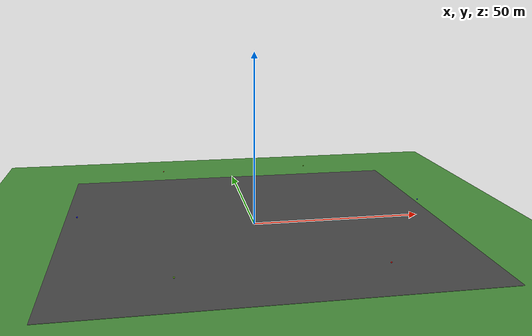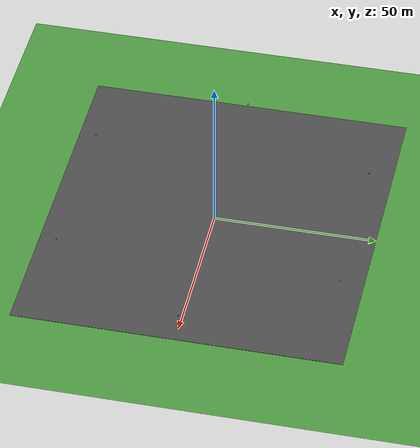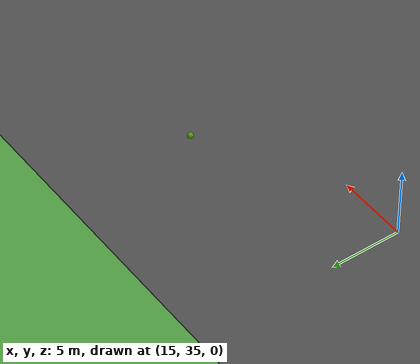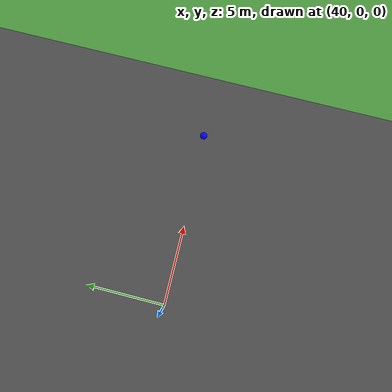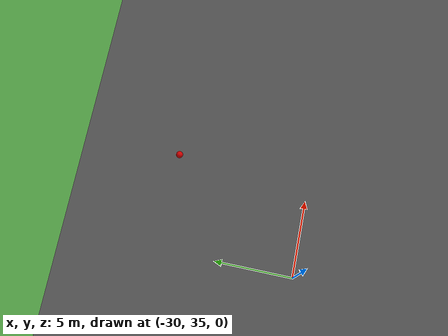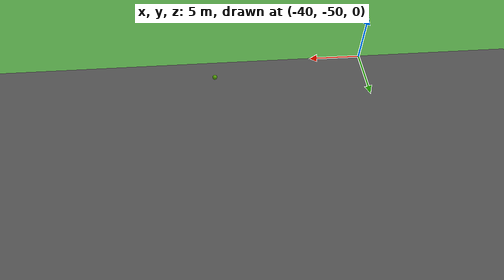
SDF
<sdf version="1.6">
 <world name="default">
  <physics name="default_physics" type="ode">
   <gravity>0 0 -9.8066</gravity>
   <ode>
    <solver><type>quick</type><iters>100</iters><sor>1.0</sor></solver>
    <constraints>
     <cfm>0.0</cfm>
     <erp>0.9</erp>
     <contact_max_correcting_vel>0.1</contact_max_correcting_vel>
     <contact_surface_layer>0.0</contact_surface_layer>
    </constraints>
   </ode>
   <real_time_update_rate>-1</real_time_update_rate>
  </physics>
  <scene><ambient>0.6 0.6 0.6 1</ambient><background>0.7 0.7 0.7 1</background><shadows>false</shadows></scene>
  <include><uri>model://sun</uri></include>
  <model name="grass_plane">
   <static>true</static>
   <link name="link">
    <collision name="collision">
     <geometry><plane><normal>0 0 1</normal><size>5000 5000</size></plane></geometry>
    </collision>
    <visual name="visual">
     <pose>0 0 -0.25 0 0 0</pose>
     <cast_shadows>false</cast_shadows>
     <geometry><plane><normal>0 0 1</normal><size>5000 5000</size></plane></geometry>
     <material>
      <script><uri>file://media/materials/scripts/gazebo.material</uri><name>Gazebo/Grass</name></script>
     </material>
    </visual>
   </link>
  </model>
  <model name="asphalt_pad">
   <static>true</static>
   <link name="link">
    <collision name="collision">
     <geometry><plane><normal>0 0 1</normal><size>200 200</size></plane></geometry>
     <surface><friction><ode><mu>1</mu><mu2>1</mu2></ode></friction></surface>
    </collision>
    <visual name="visual">
     <pose>0 0 0.01 0 0 0</pose>
     <cast_shadows>false</cast_shadows>
     <geometry><box><size>110 100 0.1</size></box></geometry>
     <material>
      <script>
       <uri>model://asphalt_plane/materials/scripts</uri>
       <uri>model://asphalt_plane/materials/textures</uri>
       <name>vrc/asphalt</name>
      </script>
      <ambient>0.5 0.5 0.5 1</ambient>
      <diffuse>0.6 0.6 0.6 1</diffuse>
      <specular>0.1 0.1 0.1 1</specular>
     </material>
    </visual>
   </link>
  </model>
  <model name="origin.origin">
   <link name="link">
    <inertial>
     <inertia><ixx>0.1</ixx><ixy>0</ixy><ixz>0</ixz><iyy>0.1</iyy><iyz>0</iyz><izz>0.1</izz></inertia>
     <mass>1</mass>
    </inertial>
    <gravity>0</gravity>
    <visual name="visual">
     <geometry><sphere><radius>0.2</radius></sphere></geometry>
     <material>
      <script><name>Gazebo/Grey</name><uri>file://media/materials/scripts/gazebo.material</uri></script>
      <shader type="pixel"><normal_map>__default__</normal_map></shader>
      <ambient>0.3 0.3 0.3 1</ambient>
      <diffuse>1.0 1.0 1.0 1</diffuse>
      <specular>0.01 0.01 0.01 1</specular>
      <emissive>0 0 0 1</emissive>
     </material>
     <transparency>0.05</transparency>
    </visual>
   </link>
   <static>0</static>
  </model>
  <model name="traj_1.0">
   <pose>50.0 0.0 5 0 0 0</pose>
   <link name="link">
    <inertial>
     <inertia><ixx>0.1</ixx><ixy>0</ixy><ixz>0</ixz><iyy>0.1</iyy><iyz>0</iyz><izz>0.1</izz></inertia>
     <mass>1</mass>
    </inertial>
    <gravity>0</gravity>
    <visual name="visual">
     <geometry><sphere><radius>0.2</radius></sphere></geometry>
     <material>
      <script><name>Gazebo/Grey</name><uri>file://media/materials/scripts/gazebo.material</uri></script>
      <shader type="pixel"><normal_map>__default__</normal_map></shader>
      <ambient>0.3 0.3 0.3 1</ambient>
      <diffuse>0.0 0.0 1.0 1</diffuse>
      <specular>0.01 0.01 0.01 1</specular>
      <emissive>0 0 0 1</emissive>
     </material>
     <transparency>0.05</transparency>
    </visual>
   </link>
   <static>0</static>
  </model>
  <model name="traj_1.1">
   <pose>-50.0 0.0 5 0 0 0</pose>
   <link name="link">
    <inertial>
     <inertia><ixx>0.1</ixx><ixy>0</ixy><ixz>0</ixz><iyy>0.1</iyy><iyz>0</iyz><izz>0.1</izz></inertia>
     <mass>1</mass>
    </inertial>
    <gravity>0</gravity>
    <visual name="visual">
     <geometry><sphere><radius>0.2</radius></sphere></geometry>
     <material>
      <script><name>Gazebo/Grey</name><uri>file://media/materials/scripts/gazebo.material</uri></script>
      <shader type="pixel"><normal_map>__default__</normal_map></shader>
      <ambient>0.3 0.3 0.3 1</ambient>
      <diffuse>0.0 0.0 1.0 1</diffuse>
      <specular>0.01 0.01 0.01 1</specular>
      <emissive>0 0 0 1</emissive>
     </material>
     <transparency>0.05</transparency>
    </visual>
   </link>
   <static>0</static>
  </model>
  <model name="traj_2.0">
   <pose>-25.0 43.3 5 0 0 0</pose>
   <link name="link">
    <inertial>
     <inertia><ixx>0.1</ixx><ixy>0</ixy><ixz>0</ixz><iyy>0.1</iyy><iyz>0</iyz><izz>0.1</izz></inertia>
     <mass>1</mass>
    </inertial>
    <gravity>0</gravity>
    <visual name="visual">
     <geometry><sphere><radius>0.2</radius></sphere></geometry>
     <material>
      <script><name>Gazebo/Grey</name><uri>file://media/materials/scripts/gazebo.material</uri></script>
      <shader type="pixel"><normal_map>__default__</normal_map></shader>
      <ambient>0.3 0.3 0.3 1</ambient>
      <diffuse>0.8 0.0 0.0 1</diffuse>
      <specular>0.01 0.01 0.01 1</specular>
      <emissive>0 0 0 1</emissive>
     </material>
     <transparency>0.05</transparency>
    </visual>
   </link>
   <static>0</static>
  </model>
  <model name="traj_2.1">
   <pose>25.0 -43.3 5 0 0 0</pose>
   <link name="link">
    <inertial>
     <inertia><ixx>0.1</ixx><ixy>0</ixy><ixz>0</ixz><iyy>0.1</iyy><iyz>0</iyz><izz>0.1</izz></inertia>
     <mass>1</mass>
    </inertial>
    <gravity>0</gravity>
    <visual name="visual">
     <geometry><sphere><radius>0.2</radius></sphere></geometry>
     <material>
      <script><name>Gazebo/Grey</name><uri>file://media/materials/scripts/gazebo.material</uri></script>
      <shader type="pixel"><normal_map>__default__</normal_map></shader>
      <ambient>0.3 0.3 0.3 1</ambient>
      <diffuse>0.8 0.0 0.0 1</diffuse>
      <specular>0.01 0.01 0.01 1</specular>
      <emissive>0 0 0 1</emissive>
     </material>
     <transparency>0.05</transparency>
    </visual>
   </link>
   <static>0</static>
  </model>
  <model name="traj_3.0">
   <pose>-25.0 -43.3 5 0 0 0</pose>
   <link name="link">
    <inertial>
     <inertia><ixx>0.1</ixx><ixy>0</ixy><ixz>0</ixz><iyy>0.1</iyy><iyz>0</iyz><izz>0.1</izz></inertia>
     <mass>1</mass>
    </inertial>
    <gravity>0</gravity>
    <visual name="visual">
     <geometry><sphere><radius>0.2</radius></sphere></geometry>
     <material>
      <script><name>Gazebo/Grey</name><uri>file://media/materials/scripts/gazebo.material</uri></script>
      <shader type="pixel"><normal_map>__default__</normal_map></shader>
      <ambient>0.3 0.3 0.3 1</ambient>
      <diffuse>0.306 0.604 0.024 1</diffuse>
      <specular>0.01 0.01 0.01 1</specular>
      <emissive>0 0 0 1</emissive>
     </material>
     <transparency>0.05</transparency>
    </visual>
   </link>
   <static>0</static>
  </model>
  <model name="traj_3.1">
   <pose>25.0 43.3 5 0 0 0</pose>
   <link name="link">
    <inertial>
     <inertia><ixx>0.1</ixx><ixy>0</ixy><ixz>0</ixz><iyy>0.1</iyy><iyz>0</iyz><izz>0.1</izz></inertia>
     <mass>1</mass>
    </inertial>
    <gravity>0</gravity>
    <visual name="visual">
     <geometry><sphere><radius>0.2</radius></sphere></geometry>
     <material>
      <script><name>Gazebo/Grey</name><uri>file://media/materials/scripts/gazebo.material</uri></script>
      <shader type="pixel"><normal_map>__default__</normal_map></shader>
      <ambient>0.3 0.3 0.3 1</ambient>
      <diffuse>0.306 0.604 0.024 1</diffuse>
      <specular>0.01 0.01 0.01 1</specular>
      <emissive>0 0 0 1</emissive>
     </material>
     <transparency>0.05</transparency>
    </visual>
   </link>
   <static>0</static>
  </model>
 </world>
</sdf>
